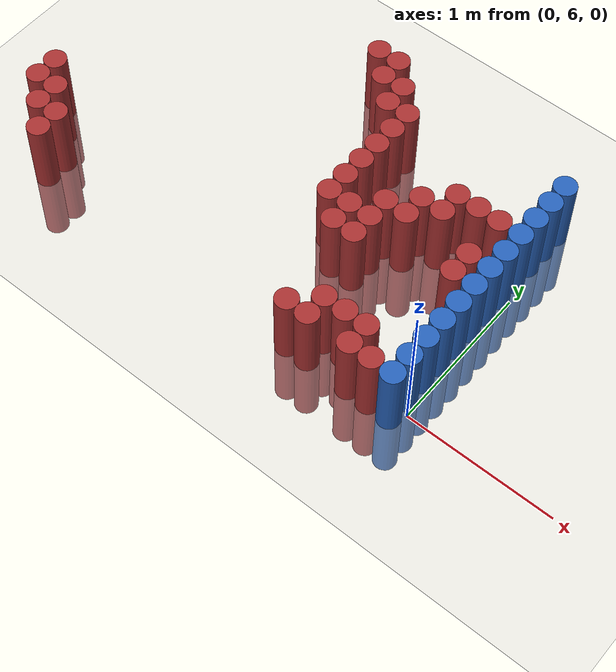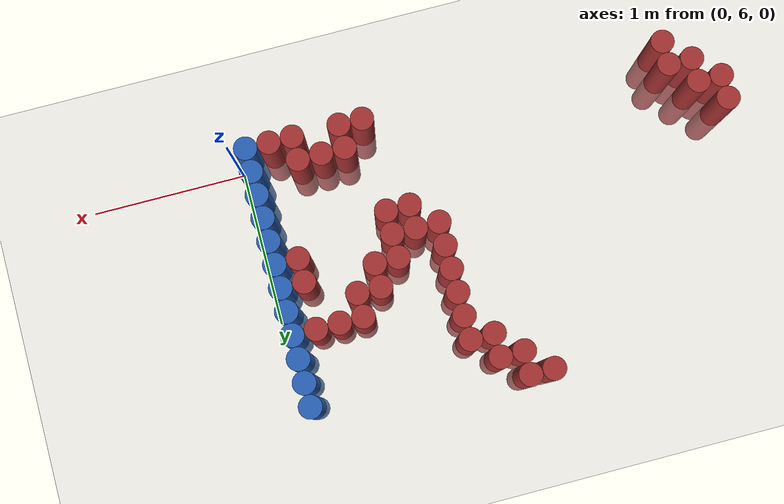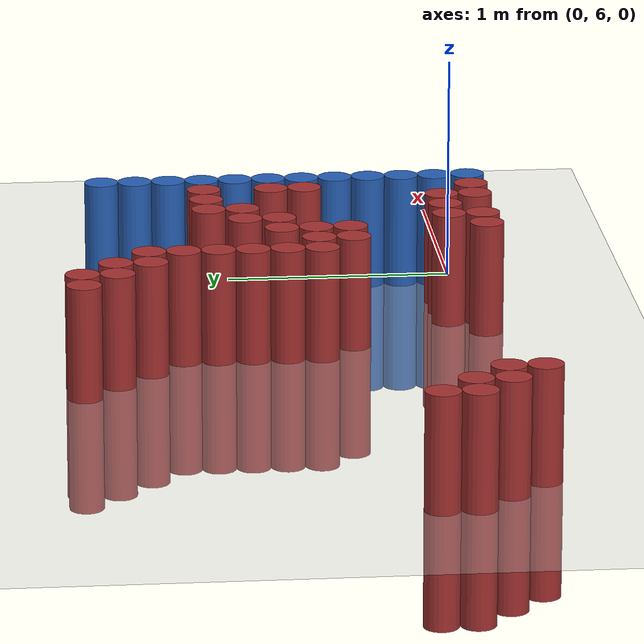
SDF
<sdf version="1.6">
 <world name="default">
  <model name="ground_plane">
   <static>1</static>
   <link name="link">
    <collision name="collision">
     <geometry><plane><normal>0 0 1</normal><size>100 100</size></plane></geometry>
     <surface><friction><ode><mu>100</mu><mu2>50</mu2></ode></friction></surface>
    </collision>
    <visual name="visual">
     <cast_shadows>0</cast_shadows>
     <geometry><plane><normal>0 0 1</normal><size>100 100</size></plane></geometry>
     <material>
      <script><uri>file://media/materials/scripts/gazebo.material</uri><name>Gazebo/Grey</name></script>
     </material>
    </visual>
   </link>
  </model>
  <model name="unit_cylinder_173">
   <static>1</static>
   <pose>-3.075000 6.225000 0.000000 0.000000 0.000000 0.000000</pose>
   <link name="link">
    <inertial>
     <mass>1</mass>
     <inertia><ixx>0.145833</ixx><ixy>0</ixy><ixz>0</ixz><iyy>0.145833</iyy><iyz>0</iyz><izz>0.125</izz></inertia>
    </inertial>
    <collision name="collision">
     <geometry><cylinder><radius>0.075000</radius><length>1</length></cylinder></geometry>
    </collision>
    <visual name="visual">
     <geometry><cylinder><radius>0.075000</radius><length>1</length></cylinder></geometry>
     <material>
      <ambient>0.648000 0.192000 0.192000 1</ambient>
      <diffuse>0.648000 0.192000 0.192000 1</diffuse>
     </material>
     <material>
      <script><name>Gazebo/Grey</name><uri>file://media/materials/scripts/gazebo.material</uri></script>
     </material>
    </visual>
   </link>
  </model>
  <model name="unit_cylinder_174">
   <static>1</static>
   <pose>-3.075000 6.375000 0.000000 0.000000 0.000000 0.000000</pose>
   <link name="link">
    <inertial>
     <mass>1</mass>
     <inertia><ixx>0.145833</ixx><ixy>0</ixy><ixz>0</ixz><iyy>0.145833</iyy><iyz>0</iyz><izz>0.125</izz></inertia>
    </inertial>
    <collision name="collision">
     <geometry><cylinder><radius>0.075000</radius><length>1</length></cylinder></geometry>
    </collision>
    <visual name="visual">
     <geometry><cylinder><radius>0.075000</radius><length>1</length></cylinder></geometry>
     <material>
      <ambient>0.648000 0.192000 0.192000 1</ambient>
      <diffuse>0.648000 0.192000 0.192000 1</diffuse>
     </material>
     <material>
      <script><name>Gazebo/Grey</name><uri>file://media/materials/scripts/gazebo.material</uri></script>
     </material>
    </visual>
   </link>
  </model>
  <model name="unit_cylinder_177">
   <static>1</static>
   <pose>-2.925000 6.075000 0.000000 0.000000 0.000000 0.000000</pose>
   <link name="link">
    <inertial>
     <mass>1</mass>
     <inertia><ixx>0.145833</ixx><ixy>0</ixy><ixz>0</ixz><iyy>0.145833</iyy><iyz>0</iyz><izz>0.125</izz></inertia>
    </inertial>
    <collision name="collision">
     <geometry><cylinder><radius>0.075000</radius><length>1</length></cylinder></geometry>
    </collision>
    <visual name="visual">
     <geometry><cylinder><radius>0.075000</radius><length>1</length></cylinder></geometry>
     <material>
      <ambient>0.648000 0.192000 0.192000 1</ambient>
      <diffuse>0.648000 0.192000 0.192000 1</diffuse>
     </material>
     <material>
      <script><name>Gazebo/Grey</name><uri>file://media/materials/scripts/gazebo.material</uri></script>
     </material>
    </visual>
   </link>
  </model>
  <model name="unit_cylinder_178">
   <static>1</static>
   <pose>-2.925000 6.225000 0.000000 0.000000 0.000000 0.000000</pose>
   <link name="link">
    <inertial>
     <mass>1</mass>
     <inertia><ixx>0.145833</ixx><ixy>0</ixy><ixz>0</ixz><iyy>0.145833</iyy><iyz>0</iyz><izz>0.125</izz></inertia>
    </inertial>
    <collision name="collision">
     <geometry><cylinder><radius>0.075000</radius><length>1</length></cylinder></geometry>
    </collision>
    <visual name="visual">
     <geometry><cylinder><radius>0.075000</radius><length>1</length></cylinder></geometry>
     <material>
      <ambient>0.648000 0.192000 0.192000 1</ambient>
      <diffuse>0.648000 0.192000 0.192000 1</diffuse>
     </material>
     <material>
      <script><name>Gazebo/Grey</name><uri>file://media/materials/scripts/gazebo.material</uri></script>
     </material>
    </visual>
   </link>
  </model>
  <model name="unit_cylinder_182">
   <static>1</static>
   <pose>-2.775000 5.925000 0.000000 0.000000 0.000000 0.000000</pose>
   <link name="link">
    <inertial>
     <mass>1</mass>
     <inertia><ixx>0.145833</ixx><ixy>0</ixy><ixz>0</ixz><iyy>0.145833</iyy><iyz>0</iyz><izz>0.125</izz></inertia>
    </inertial>
    <collision name="collision">
     <geometry><cylinder><radius>0.075000</radius><length>1</length></cylinder></geometry>
    </collision>
    <visual name="visual">
     <geometry><cylinder><radius>0.075000</radius><length>1</length></cylinder></geometry>
     <material>
      <ambient>0.648000 0.192000 0.192000 1</ambient>
      <diffuse>0.648000 0.192000 0.192000 1</diffuse>
     </material>
     <material>
      <script><name>Gazebo/Grey</name><uri>file://media/materials/scripts/gazebo.material</uri></script>
     </material>
    </visual>
   </link>
  </model>
  <model name="unit_cylinder_183">
   <static>1</static>
   <pose>-2.775000 6.075000 0.000000 0.000000 0.000000 0.000000</pose>
   <link name="link">
    <inertial>
     <mass>1</mass>
     <inertia><ixx>0.145833</ixx><ixy>0</ixy><ixz>0</ixz><iyy>0.145833</iyy><iyz>0</iyz><izz>0.125</izz></inertia>
    </inertial>
    <collision name="collision">
     <geometry><cylinder><radius>0.075000</radius><length>1</length></cylinder></geometry>
    </collision>
    <visual name="visual">
     <geometry><cylinder><radius>0.075000</radius><length>1</length></cylinder></geometry>
     <material>
      <ambient>0.648000 0.192000 0.192000 1</ambient>
      <diffuse>0.648000 0.192000 0.192000 1</diffuse>
     </material>
     <material>
      <script><name>Gazebo/Grey</name><uri>file://media/materials/scripts/gazebo.material</uri></script>
     </material>
    </visual>
   </link>
  </model>
  <model name="unit_cylinder_206">
   <static>1</static>
   <pose>-1.575000 7.725000 0.000000 0.000000 0.000000 0.000000</pose>
   <link name="link">
    <inertial>
     <mass>1</mass>
     <inertia><ixx>0.145833</ixx><ixy>0</ixy><ixz>0</ixz><iyy>0.145833</iyy><iyz>0</iyz><izz>0.125</izz></inertia>
    </inertial>
    <collision name="collision">
     <geometry><cylinder><radius>0.075000</radius><length>1</length></cylinder></geometry>
    </collision>
    <visual name="visual">
     <geometry><cylinder><radius>0.075000</radius><length>1</length></cylinder></geometry>
     <material>
      <ambient>0.648000 0.192000 0.192000 1</ambient>
      <diffuse>0.648000 0.192000 0.192000 1</diffuse>
     </material>
     <material>
      <script><name>Gazebo/Grey</name><uri>file://media/materials/scripts/gazebo.material</uri></script>
     </material>
    </visual>
   </link>
  </model>
  <model name="unit_cylinder_211">
   <static>1</static>
   <pose>-1.425000 7.575000 0.000000 0.000000 0.000000 0.000000</pose>
   <link name="link">
    <inertial>
     <mass>1</mass>
     <inertia><ixx>0.145833</ixx><ixy>0</ixy><ixz>0</ixz><iyy>0.145833</iyy><iyz>0</iyz><izz>0.125</izz></inertia>
    </inertial>
    <collision name="collision">
     <geometry><cylinder><radius>0.075000</radius><length>1</length></cylinder></geometry>
    </collision>
    <visual name="visual">
     <geometry><cylinder><radius>0.075000</radius><length>1</length></cylinder></geometry>
     <material>
      <ambient>0.648000 0.192000 0.192000 1</ambient>
      <diffuse>0.648000 0.192000 0.192000 1</diffuse>
     </material>
     <material>
      <script><name>Gazebo/Grey</name><uri>file://media/materials/scripts/gazebo.material</uri></script>
     </material>
    </visual>
   </link>
  </model>
  <model name="unit_cylinder_212">
   <static>1</static>
   <pose>-1.425000 7.725000 0.000000 0.000000 0.000000 0.000000</pose>
   <link name="link">
    <inertial>
     <mass>1</mass>
     <inertia><ixx>0.145833</ixx><ixy>0</ixy><ixz>0</ixz><iyy>0.145833</iyy><iyz>0</iyz><izz>0.125</izz></inertia>
    </inertial>
    <collision name="collision">
     <geometry><cylinder><radius>0.075000</radius><length>1</length></cylinder></geometry>
    </collision>
    <visual name="visual">
     <geometry><cylinder><radius>0.075000</radius><length>1</length></cylinder></geometry>
     <material>
      <ambient>0.648000 0.192000 0.192000 1</ambient>
      <diffuse>0.648000 0.192000 0.192000 1</diffuse>
     </material>
     <material>
      <script><name>Gazebo/Grey</name><uri>file://media/materials/scripts/gazebo.material</uri></script>
     </material>
    </visual>
   </link>
  </model>
  <model name="unit_cylinder_215">
   <static>1</static>
   <pose>-1.275000 7.425000 0.000000 0.000000 0.000000 0.000000</pose>
   <link name="link">
    <inertial>
     <mass>1</mass>
     <inertia><ixx>0.145833</ixx><ixy>0</ixy><ixz>0</ixz><iyy>0.145833</iyy><iyz>0</iyz><izz>0.125</izz></inertia>
    </inertial>
    <collision name="collision">
     <geometry><cylinder><radius>0.075000</radius><length>1</length></cylinder></geometry>
    </collision>
    <visual name="visual">
     <geometry><cylinder><radius>0.075000</radius><length>1</length></cylinder></geometry>
     <material>
      <ambient>0.648000 0.192000 0.192000 1</ambient>
      <diffuse>0.648000 0.192000 0.192000 1</diffuse>
     </material>
     <material>
      <script><name>Gazebo/Grey</name><uri>file://media/materials/scripts/gazebo.material</uri></script>
     </material>
    </visual>
   </link>
  </model>
  <model name="unit_cylinder_216">
   <static>1</static>
   <pose>-1.275000 7.575000 0.000000 0.000000 0.000000 0.000000</pose>
   <link name="link">
    <inertial>
     <mass>1</mass>
     <inertia><ixx>0.145833</ixx><ixy>0</ixy><ixz>0</ixz><iyy>0.145833</iyy><iyz>0</iyz><izz>0.125</izz></inertia>
    </inertial>
    <collision name="collision">
     <geometry><cylinder><radius>0.075000</radius><length>1</length></cylinder></geometry>
    </collision>
    <visual name="visual">
     <geometry><cylinder><radius>0.075000</radius><length>1</length></cylinder></geometry>
     <material>
      <ambient>0.648000 0.192000 0.192000 1</ambient>
      <diffuse>0.648000 0.192000 0.192000 1</diffuse>
     </material>
     <material>
      <script><name>Gazebo/Grey</name><uri>file://media/materials/scripts/gazebo.material</uri></script>
     </material>
    </visual>
   </link>
  </model>
  <model name="unit_cylinder_218">
   <static>1</static>
   <pose>-1.125000 6.675000 0.000000 0.000000 0.000000 0.000000</pose>
   <link name="link">
    <inertial>
     <mass>1</mass>
     <inertia><ixx>0.145833</ixx><ixy>0</ixy><ixz>0</ixz><iyy>0.145833</iyy><iyz>0</iyz><izz>0.125</izz></inertia>
    </inertial>
    <collision name="collision">
     <geometry><cylinder><radius>0.075000</radius><length>1</length></cylinder></geometry>
    </collision>
    <visual name="visual">
     <geometry><cylinder><radius>0.075000</radius><length>1</length></cylinder></geometry>
     <material>
      <ambient>0.648000 0.192000 0.192000 1</ambient>
      <diffuse>0.648000 0.192000 0.192000 1</diffuse>
     </material>
     <material>
      <script><name>Gazebo/Grey</name><uri>file://media/materials/scripts/gazebo.material</uri></script>
     </material>
    </visual>
   </link>
  </model>
  <model name="unit_cylinder_219">
   <static>1</static>
   <pose>-1.125000 6.825000 0.000000 0.000000 0.000000 0.000000</pose>
   <link name="link">
    <inertial>
     <mass>1</mass>
     <inertia><ixx>0.145833</ixx><ixy>0</ixy><ixz>0</ixz><iyy>0.145833</iyy><iyz>0</iyz><izz>0.125</izz></inertia>
    </inertial>
    <collision name="collision">
     <geometry><cylinder><radius>0.075000</radius><length>1</length></cylinder></geometry>
    </collision>
    <visual name="visual">
     <geometry><cylinder><radius>0.075000</radius><length>1</length></cylinder></geometry>
     <material>
      <ambient>0.648000 0.192000 0.192000 1</ambient>
      <diffuse>0.648000 0.192000 0.192000 1</diffuse>
     </material>
     <material>
      <script><name>Gazebo/Grey</name><uri>file://media/materials/scripts/gazebo.material</uri></script>
     </material>
    </visual>
   </link>
  </model>
  <model name="unit_cylinder_220">
   <static>1</static>
   <pose>-1.125000 6.975000 0.000000 0.000000 0.000000 0.000000</pose>
   <link name="link">
    <inertial>
     <mass>1</mass>
     <inertia><ixx>0.145833</ixx><ixy>0</ixy><ixz>0</ixz><iyy>0.145833</iyy><iyz>0</iyz><izz>0.125</izz></inertia>
    </inertial>
    <collision name="collision">
     <geometry><cylinder><radius>0.075000</radius><length>1</length></cylinder></geometry>
    </collision>
    <visual name="visual">
     <geometry><cylinder><radius>0.075000</radius><length>1</length></cylinder></geometry>
     <material>
      <ambient>0.648000 0.192000 0.192000 1</ambient>
      <diffuse>0.648000 0.192000 0.192000 1</diffuse>
     </material>
     <material>
      <script><name>Gazebo/Grey</name><uri>file://media/materials/scripts/gazebo.material</uri></script>
     </material>
    </visual>
   </link>
  </model>
  <model name="unit_cylinder_221">
   <static>1</static>
   <pose>-1.125000 7.125000 0.000000 0.000000 0.000000 0.000000</pose>
   <link name="link">
    <inertial>
     <mass>1</mass>
     <inertia><ixx>0.145833</ixx><ixy>0</ixy><ixz>0</ixz><iyy>0.145833</iyy><iyz>0</iyz><izz>0.125</izz></inertia>
    </inertial>
    <collision name="collision">
     <geometry><cylinder><radius>0.075000</radius><length>1</length></cylinder></geometry>
    </collision>
    <visual name="visual">
     <geometry><cylinder><radius>0.075000</radius><length>1</length></cylinder></geometry>
     <material>
      <ambient>0.648000 0.192000 0.192000 1</ambient>
      <diffuse>0.648000 0.192000 0.192000 1</diffuse>
     </material>
     <material>
      <script><name>Gazebo/Grey</name><uri>file://media/materials/scripts/gazebo.material</uri></script>
     </material>
    </visual>
   </link>
  </model>
  <model name="unit_cylinder_222">
   <static>1</static>
   <pose>-1.125000 7.275000 0.000000 0.000000 0.000000 0.000000</pose>
   <link name="link">
    <inertial>
     <mass>1</mass>
     <inertia><ixx>0.145833</ixx><ixy>0</ixy><ixz>0</ixz><iyy>0.145833</iyy><iyz>0</iyz><izz>0.125</izz></inertia>
    </inertial>
    <collision name="collision">
     <geometry><cylinder><radius>0.075000</radius><length>1</length></cylinder></geometry>
    </collision>
    <visual name="visual">
     <geometry><cylinder><radius>0.075000</radius><length>1</length></cylinder></geometry>
     <material>
      <ambient>0.648000 0.192000 0.192000 1</ambient>
      <diffuse>0.648000 0.192000 0.192000 1</diffuse>
     </material>
     <material>
      <script><name>Gazebo/Grey</name><uri>file://media/materials/scripts/gazebo.material</uri></script>
     </material>
    </visual>
   </link>
  </model>
  <model name="unit_cylinder_223">
   <static>1</static>
   <pose>-1.125000 7.425000 0.000000 0.000000 0.000000 0.000000</pose>
   <link name="link">
    <inertial>
     <mass>1</mass>
     <inertia><ixx>0.145833</ixx><ixy>0</ixy><ixz>0</ixz><iyy>0.145833</iyy><iyz>0</iyz><izz>0.125</izz></inertia>
    </inertial>
    <collision name="collision">
     <geometry><cylinder><radius>0.075000</radius><length>1</length></cylinder></geometry>
    </collision>
    <visual name="visual">
     <geometry><cylinder><radius>0.075000</radius><length>1</length></cylinder></geometry>
     <material>
      <ambient>0.648000 0.192000 0.192000 1</ambient>
      <diffuse>0.648000 0.192000 0.192000 1</diffuse>
     </material>
     <material>
      <script><name>Gazebo/Grey</name><uri>file://media/materials/scripts/gazebo.material</uri></script>
     </material>
    </visual>
   </link>
  </model>
  <model name="unit_cylinder_228">
   <static>1</static>
   <pose>-0.975000 6.525000 0.000000 0.000000 0.000000 0.000000</pose>
   <link name="link">
    <inertial>
     <mass>1</mass>
     <inertia><ixx>0.145833</ixx><ixy>0</ixy><ixz>0</ixz><iyy>0.145833</iyy><iyz>0</iyz><izz>0.125</izz></inertia>
    </inertial>
    <collision name="collision">
     <geometry><cylinder><radius>0.075000</radius><length>1</length></cylinder></geometry>
    </collision>
    <visual name="visual">
     <geometry><cylinder><radius>0.075000</radius><length>1</length></cylinder></geometry>
     <material>
      <ambient>0.648000 0.192000 0.192000 1</ambient>
      <diffuse>0.648000 0.192000 0.192000 1</diffuse>
     </material>
     <material>
      <script><name>Gazebo/Grey</name><uri>file://media/materials/scripts/gazebo.material</uri></script>
     </material>
    </visual>
   </link>
  </model>
  <model name="unit_cylinder_229">
   <static>1</static>
   <pose>-0.975000 6.675000 0.000000 0.000000 0.000000 0.000000</pose>
   <link name="link">
    <inertial>
     <mass>1</mass>
     <inertia><ixx>0.145833</ixx><ixy>0</ixy><ixz>0</ixz><iyy>0.145833</iyy><iyz>0</iyz><izz>0.125</izz></inertia>
    </inertial>
    <collision name="collision">
     <geometry><cylinder><radius>0.075000</radius><length>1</length></cylinder></geometry>
    </collision>
    <visual name="visual">
     <geometry><cylinder><radius>0.075000</radius><length>1</length></cylinder></geometry>
     <material>
      <ambient>0.648000 0.192000 0.192000 1</ambient>
      <diffuse>0.648000 0.192000 0.192000 1</diffuse>
     </material>
     <material>
      <script><name>Gazebo/Grey</name><uri>file://media/materials/scripts/gazebo.material</uri></script>
     </material>
    </visual>
   </link>
  </model>
  <model name="unit_cylinder_236">
   <static>1</static>
   <pose>-0.825000 5.925000 0.000000 0.000000 0.000000 0.000000</pose>
   <link name="link">
    <inertial>
     <mass>1</mass>
     <inertia><ixx>0.145833</ixx><ixy>0</ixy><ixz>0</ixz><iyy>0.145833</iyy><iyz>0</iyz><izz>0.125</izz></inertia>
    </inertial>
    <collision name="collision">
     <geometry><cylinder><radius>0.075000</radius><length>1</length></cylinder></geometry>
    </collision>
    <visual name="visual">
     <geometry><cylinder><radius>0.075000</radius><length>1</length></cylinder></geometry>
     <material>
      <ambient>0.648000 0.192000 0.192000 1</ambient>
      <diffuse>0.648000 0.192000 0.192000 1</diffuse>
     </material>
     <material>
      <script><name>Gazebo/Grey</name><uri>file://media/materials/scripts/gazebo.material</uri></script>
     </material>
    </visual>
   </link>
  </model>
  <model name="unit_cylinder_237">
   <static>1</static>
   <pose>-0.825000 6.525000 0.000000 0.000000 0.000000 0.000000</pose>
   <link name="link">
    <inertial>
     <mass>1</mass>
     <inertia><ixx>0.145833</ixx><ixy>0</ixy><ixz>0</ixz><iyy>0.145833</iyy><iyz>0</iyz><izz>0.125</izz></inertia>
    </inertial>
    <collision name="collision">
     <geometry><cylinder><radius>0.075000</radius><length>1</length></cylinder></geometry>
    </collision>
    <visual name="visual">
     <geometry><cylinder><radius>0.075000</radius><length>1</length></cylinder></geometry>
     <material>
      <ambient>0.648000 0.192000 0.192000 1</ambient>
      <diffuse>0.648000 0.192000 0.192000 1</diffuse>
     </material>
     <material>
      <script><name>Gazebo/Grey</name><uri>file://media/materials/scripts/gazebo.material</uri></script>
     </material>
    </visual>
   </link>
  </model>
  <model name="unit_cylinder_238">
   <static>1</static>
   <pose>-0.825000 6.675000 0.000000 0.000000 0.000000 0.000000</pose>
   <link name="link">
    <inertial>
     <mass>1</mass>
     <inertia><ixx>0.145833</ixx><ixy>0</ixy><ixz>0</ixz><iyy>0.145833</iyy><iyz>0</iyz><izz>0.125</izz></inertia>
    </inertial>
    <collision name="collision">
     <geometry><cylinder><radius>0.075000</radius><length>1</length></cylinder></geometry>
    </collision>
    <visual name="visual">
     <geometry><cylinder><radius>0.075000</radius><length>1</length></cylinder></geometry>
     <material>
      <ambient>0.648000 0.192000 0.192000 1</ambient>
      <diffuse>0.648000 0.192000 0.192000 1</diffuse>
     </material>
     <material>
      <script><name>Gazebo/Grey</name><uri>file://media/materials/scripts/gazebo.material</uri></script>
     </material>
    </visual>
   </link>
  </model>
  <model name="unit_cylinder_239">
   <static>1</static>
   <pose>-0.825000 6.825000 0.000000 0.000000 0.000000 0.000000</pose>
   <link name="link">
    <inertial>
     <mass>1</mass>
     <inertia><ixx>0.145833</ixx><ixy>0</ixy><ixz>0</ixz><iyy>0.145833</iyy><iyz>0</iyz><izz>0.125</izz></inertia>
    </inertial>
    <collision name="collision">
     <geometry><cylinder><radius>0.075000</radius><length>1</length></cylinder></geometry>
    </collision>
    <visual name="visual">
     <geometry><cylinder><radius>0.075000</radius><length>1</length></cylinder></geometry>
     <material>
      <ambient>0.648000 0.192000 0.192000 1</ambient>
      <diffuse>0.648000 0.192000 0.192000 1</diffuse>
     </material>
     <material>
      <script><name>Gazebo/Grey</name><uri>file://media/materials/scripts/gazebo.material</uri></script>
     </material>
    </visual>
   </link>
  </model>
  <model name="unit_cylinder_242">
   <static>1</static>
   <pose>-0.675000 5.925000 0.000000 0.000000 0.000000 0.000000</pose>
   <link name="link">
    <inertial>
     <mass>1</mass>
     <inertia><ixx>0.145833</ixx><ixy>0</ixy><ixz>0</ixz><iyy>0.145833</iyy><iyz>0</iyz><izz>0.125</izz></inertia>
    </inertial>
    <collision name="collision">
     <geometry><cylinder><radius>0.075000</radius><length>1</length></cylinder></geometry>
    </collision>
    <visual name="visual">
     <geometry><cylinder><radius>0.075000</radius><length>1</length></cylinder></geometry>
     <material>
      <ambient>0.648000 0.192000 0.192000 1</ambient>
      <diffuse>0.648000 0.192000 0.192000 1</diffuse>
     </material>
     <material>
      <script><name>Gazebo/Grey</name><uri>file://media/materials/scripts/gazebo.material</uri></script>
     </material>
    </visual>
   </link>
  </model>
  <model name="unit_cylinder_243">
   <static>1</static>
   <pose>-0.675000 6.075000 0.000000 0.000000 0.000000 0.000000</pose>
   <link name="link">
    <inertial>
     <mass>1</mass>
     <inertia><ixx>0.145833</ixx><ixy>0</ixy><ixz>0</ixz><iyy>0.145833</iyy><iyz>0</iyz><izz>0.125</izz></inertia>
    </inertial>
    <collision name="collision">
     <geometry><cylinder><radius>0.075000</radius><length>1</length></cylinder></geometry>
    </collision>
    <visual name="visual">
     <geometry><cylinder><radius>0.075000</radius><length>1</length></cylinder></geometry>
     <material>
      <ambient>0.648000 0.192000 0.192000 1</ambient>
      <diffuse>0.648000 0.192000 0.192000 1</diffuse>
     </material>
     <material>
      <script><name>Gazebo/Grey</name><uri>file://media/materials/scripts/gazebo.material</uri></script>
     </material>
    </visual>
   </link>
  </model>
  <model name="unit_cylinder_244">
   <static>1</static>
   <pose>-0.675000 6.825000 0.000000 0.000000 0.000000 0.000000</pose>
   <link name="link">
    <inertial>
     <mass>1</mass>
     <inertia><ixx>0.145833</ixx><ixy>0</ixy><ixz>0</ixz><iyy>0.145833</iyy><iyz>0</iyz><izz>0.125</izz></inertia>
    </inertial>
    <collision name="collision">
     <geometry><cylinder><radius>0.075000</radius><length>1</length></cylinder></geometry>
    </collision>
    <visual name="visual">
     <geometry><cylinder><radius>0.075000</radius><length>1</length></cylinder></geometry>
     <material>
      <ambient>0.648000 0.192000 0.192000 1</ambient>
      <diffuse>0.648000 0.192000 0.192000 1</diffuse>
     </material>
     <material>
      <script><name>Gazebo/Grey</name><uri>file://media/materials/scripts/gazebo.material</uri></script>
     </material>
    </visual>
   </link>
  </model>
  <model name="unit_cylinder_245">
   <static>1</static>
   <pose>-0.675000 6.975000 0.000000 0.000000 0.000000 0.000000</pose>
   <link name="link">
    <inertial>
     <mass>1</mass>
     <inertia><ixx>0.145833</ixx><ixy>0</ixy><ixz>0</ixz><iyy>0.145833</iyy><iyz>0</iyz><izz>0.125</izz></inertia>
    </inertial>
    <collision name="collision">
     <geometry><cylinder><radius>0.075000</radius><length>1</length></cylinder></geometry>
    </collision>
    <visual name="visual">
     <geometry><cylinder><radius>0.075000</radius><length>1</length></cylinder></geometry>
     <material>
      <ambient>0.648000 0.192000 0.192000 1</ambient>
      <diffuse>0.648000 0.192000 0.192000 1</diffuse>
     </material>
     <material>
      <script><name>Gazebo/Grey</name><uri>file://media/materials/scripts/gazebo.material</uri></script>
     </material>
    </visual>
   </link>
  </model>
  <model name="unit_cylinder_250">
   <static>1</static>
   <pose>-0.525000 6.075000 0.000000 0.000000 0.000000 0.000000</pose>
   <link name="link">
    <inertial>
     <mass>1</mass>
     <inertia><ixx>0.145833</ixx><ixy>0</ixy><ixz>0</ixz><iyy>0.145833</iyy><iyz>0</iyz><izz>0.125</izz></inertia>
    </inertial>
    <collision name="collision">
     <geometry><cylinder><radius>0.075000</radius><length>1</length></cylinder></geometry>
    </collision>
    <visual name="visual">
     <geometry><cylinder><radius>0.075000</radius><length>1</length></cylinder></geometry>
     <material>
      <ambient>0.648000 0.192000 0.192000 1</ambient>
      <diffuse>0.648000 0.192000 0.192000 1</diffuse>
     </material>
     <material>
      <script><name>Gazebo/Grey</name><uri>file://media/materials/scripts/gazebo.material</uri></script>
     </material>
    </visual>
   </link>
  </model>
  <model name="unit_cylinder_251">
   <static>1</static>
   <pose>-0.525000 6.975000 0.000000 0.000000 0.000000 0.000000</pose>
   <link name="link">
    <inertial>
     <mass>1</mass>
     <inertia><ixx>0.145833</ixx><ixy>0</ixy><ixz>0</ixz><iyy>0.145833</iyy><iyz>0</iyz><izz>0.125</izz></inertia>
    </inertial>
    <collision name="collision">
     <geometry><cylinder><radius>0.075000</radius><length>1</length></cylinder></geometry>
    </collision>
    <visual name="visual">
     <geometry><cylinder><radius>0.075000</radius><length>1</length></cylinder></geometry>
     <material>
      <ambient>0.648000 0.192000 0.192000 1</ambient>
      <diffuse>0.648000 0.192000 0.192000 1</diffuse>
     </material>
     <material>
      <script><name>Gazebo/Grey</name><uri>file://media/materials/scripts/gazebo.material</uri></script>
     </material>
    </visual>
   </link>
  </model>
  <model name="unit_cylinder_252">
   <static>1</static>
   <pose>-0.525000 7.125000 0.000000 0.000000 0.000000 0.000000</pose>
   <link name="link">
    <inertial>
     <mass>1</mass>
     <inertia><ixx>0.145833</ixx><ixy>0</ixy><ixz>0</ixz><iyy>0.145833</iyy><iyz>0</iyz><izz>0.125</izz></inertia>
    </inertial>
    <collision name="collision">
     <geometry><cylinder><radius>0.075000</radius><length>1</length></cylinder></geometry>
    </collision>
    <visual name="visual">
     <geometry><cylinder><radius>0.075000</radius><length>1</length></cylinder></geometry>
     <material>
      <ambient>0.648000 0.192000 0.192000 1</ambient>
      <diffuse>0.648000 0.192000 0.192000 1</diffuse>
     </material>
     <material>
      <script><name>Gazebo/Grey</name><uri>file://media/materials/scripts/gazebo.material</uri></script>
     </material>
    </visual>
   </link>
  </model>
  <model name="unit_cylinder_256">
   <static>1</static>
   <pose>-0.375000 5.925000 0.000000 0.000000 0.000000 0.000000</pose>
   <link name="link">
    <inertial>
     <mass>1</mass>
     <inertia><ixx>0.145833</ixx><ixy>0</ixy><ixz>0</ixz><iyy>0.145833</iyy><iyz>0</iyz><izz>0.125</izz></inertia>
    </inertial>
    <collision name="collision">
     <geometry><cylinder><radius>0.075000</radius><length>1</length></cylinder></geometry>
    </collision>
    <visual name="visual">
     <geometry><cylinder><radius>0.075000</radius><length>1</length></cylinder></geometry>
     <material>
      <ambient>0.648000 0.192000 0.192000 1</ambient>
      <diffuse>0.648000 0.192000 0.192000 1</diffuse>
     </material>
     <material>
      <script><name>Gazebo/Grey</name><uri>file://media/materials/scripts/gazebo.material</uri></script>
     </material>
    </visual>
   </link>
  </model>
  <model name="unit_cylinder_257">
   <static>1</static>
   <pose>-0.375000 6.075000 0.000000 0.000000 0.000000 0.000000</pose>
   <link name="link">
    <inertial>
     <mass>1</mass>
     <inertia><ixx>0.145833</ixx><ixy>0</ixy><ixz>0</ixz><iyy>0.145833</iyy><iyz>0</iyz><izz>0.125</izz></inertia>
    </inertial>
    <collision name="collision">
     <geometry><cylinder><radius>0.075000</radius><length>1</length></cylinder></geometry>
    </collision>
    <visual name="visual">
     <geometry><cylinder><radius>0.075000</radius><length>1</length></cylinder></geometry>
     <material>
      <ambient>0.648000 0.192000 0.192000 1</ambient>
      <diffuse>0.648000 0.192000 0.192000 1</diffuse>
     </material>
     <material>
      <script><name>Gazebo/Grey</name><uri>file://media/materials/scripts/gazebo.material</uri></script>
     </material>
    </visual>
   </link>
  </model>
  <model name="unit_cylinder_258">
   <static>1</static>
   <pose>-0.375000 7.125000 0.000000 0.000000 0.000000 0.000000</pose>
   <link name="link">
    <inertial>
     <mass>1</mass>
     <inertia><ixx>0.145833</ixx><ixy>0</ixy><ixz>0</ixz><iyy>0.145833</iyy><iyz>0</iyz><izz>0.125</izz></inertia>
    </inertial>
    <collision name="collision">
     <geometry><cylinder><radius>0.075000</radius><length>1</length></cylinder></geometry>
    </collision>
    <visual name="visual">
     <geometry><cylinder><radius>0.075000</radius><length>1</length></cylinder></geometry>
     <material>
      <ambient>0.648000 0.192000 0.192000 1</ambient>
      <diffuse>0.648000 0.192000 0.192000 1</diffuse>
     </material>
     <material>
      <script><name>Gazebo/Grey</name><uri>file://media/materials/scripts/gazebo.material</uri></script>
     </material>
    </visual>
   </link>
  </model>
  <model name="unit_cylinder_261">
   <static>1</static>
   <pose>-0.225000 5.925000 0.000000 0.000000 0.000000 0.000000</pose>
   <link name="link">
    <inertial>
     <mass>1</mass>
     <inertia><ixx>0.145833</ixx><ixy>0</ixy><ixz>0</ixz><iyy>0.145833</iyy><iyz>0</iyz><izz>0.125</izz></inertia>
    </inertial>
    <collision name="collision">
     <geometry><cylinder><radius>0.075000</radius><length>1</length></cylinder></geometry>
    </collision>
    <visual name="visual">
     <geometry><cylinder><radius>0.075000</radius><length>1</length></cylinder></geometry>
     <material>
      <ambient>0.648000 0.192000 0.192000 1</ambient>
      <diffuse>0.648000 0.192000 0.192000 1</diffuse>
     </material>
     <material>
      <script><name>Gazebo/Grey</name><uri>file://media/materials/scripts/gazebo.material</uri></script>
     </material>
    </visual>
   </link>
  </model>
  <model name="unit_cylinder_262">
   <static>1</static>
   <pose>-0.225000 6.675000 0.000000 0.000000 0.000000 0.000000</pose>
   <link name="link">
    <inertial>
     <mass>1</mass>
     <inertia><ixx>0.145833</ixx><ixy>0</ixy><ixz>0</ixz><iyy>0.145833</iyy><iyz>0</iyz><izz>0.125</izz></inertia>
    </inertial>
    <collision name="collision">
     <geometry><cylinder><radius>0.075000</radius><length>1</length></cylinder></geometry>
    </collision>
    <visual name="visual">
     <geometry><cylinder><radius>0.075000</radius><length>1</length></cylinder></geometry>
     <material>
      <ambient>0.648000 0.192000 0.192000 1</ambient>
      <diffuse>0.648000 0.192000 0.192000 1</diffuse>
     </material>
     <material>
      <script><name>Gazebo/Grey</name><uri>file://media/materials/scripts/gazebo.material</uri></script>
     </material>
    </visual>
   </link>
  </model>
  <model name="unit_cylinder_263">
   <static>1</static>
   <pose>-0.225000 6.825000 0.000000 0.000000 0.000000 0.000000</pose>
   <link name="link">
    <inertial>
     <mass>1</mass>
     <inertia><ixx>0.145833</ixx><ixy>0</ixy><ixz>0</ixz><iyy>0.145833</iyy><iyz>0</iyz><izz>0.125</izz></inertia>
    </inertial>
    <collision name="collision">
     <geometry><cylinder><radius>0.075000</radius><length>1</length></cylinder></geometry>
    </collision>
    <visual name="visual">
     <geometry><cylinder><radius>0.075000</radius><length>1</length></cylinder></geometry>
     <material>
      <ambient>0.648000 0.192000 0.192000 1</ambient>
      <diffuse>0.648000 0.192000 0.192000 1</diffuse>
     </material>
     <material>
      <script><name>Gazebo/Grey</name><uri>file://media/materials/scripts/gazebo.material</uri></script>
     </material>
    </visual>
   </link>
  </model>
  <model name="unit_cylinder_264">
   <static>1</static>
   <pose>-0.225000 7.125000 0.000000 0.000000 0.000000 0.000000</pose>
   <link name="link">
    <inertial>
     <mass>1</mass>
     <inertia><ixx>0.145833</ixx><ixy>0</ixy><ixz>0</ixz><iyy>0.145833</iyy><iyz>0</iyz><izz>0.125</izz></inertia>
    </inertial>
    <collision name="collision">
     <geometry><cylinder><radius>0.075000</radius><length>1</length></cylinder></geometry>
    </collision>
    <visual name="visual">
     <geometry><cylinder><radius>0.075000</radius><length>1</length></cylinder></geometry>
     <material>
      <ambient>0.648000 0.192000 0.192000 1</ambient>
      <diffuse>0.648000 0.192000 0.192000 1</diffuse>
     </material>
     <material>
      <script><name>Gazebo/Grey</name><uri>file://media/materials/scripts/gazebo.material</uri></script>
     </material>
    </visual>
   </link>
  </model>
  <model name="unit_cylinder_271">
   <static>1</static>
   <pose>-0.075000 5.925000 0.000000 0.000000 0.000000 0.000000</pose>
   <link name="link">
    <inertial>
     <mass>1</mass>
     <inertia><ixx>0.145833</ixx><ixy>0</ixy><ixz>0</ixz><iyy>0.145833</iyy><iyz>0</iyz><izz>0.125</izz></inertia>
    </inertial>
    <collision name="collision">
     <geometry><cylinder><radius>0.075000</radius><length>1</length></cylinder></geometry>
    </collision>
    <visual name="visual">
     <geometry><cylinder><radius>0.075000</radius><length>1</length></cylinder></geometry>
     <material>
      <ambient>0.152000 0.379000 0.720000 1</ambient>
      <diffuse>0.152000 0.379000 0.720000 1</diffuse>
     </material>
     <material>
      <script><name>Gazebo/Grey</name><uri>file://media/materials/scripts/gazebo.material</uri></script>
     </material>
    </visual>
   </link>
  </model>
  <model name="unit_cylinder_272">
   <static>1</static>
   <pose>-0.075000 6.075000 0.000000 0.000000 0.000000 0.000000</pose>
   <link name="link">
    <inertial>
     <mass>1</mass>
     <inertia><ixx>0.145833</ixx><ixy>0</ixy><ixz>0</ixz><iyy>0.145833</iyy><iyz>0</iyz><izz>0.125</izz></inertia>
    </inertial>
    <collision name="collision">
     <geometry><cylinder><radius>0.075000</radius><length>1</length></cylinder></geometry>
    </collision>
    <visual name="visual">
     <geometry><cylinder><radius>0.075000</radius><length>1</length></cylinder></geometry>
     <material>
      <ambient>0.152000 0.379000 0.720000 1</ambient>
      <diffuse>0.152000 0.379000 0.720000 1</diffuse>
     </material>
     <material>
      <script><name>Gazebo/Grey</name><uri>file://media/materials/scripts/gazebo.material</uri></script>
     </material>
    </visual>
   </link>
  </model>
  <model name="unit_cylinder_273">
   <static>1</static>
   <pose>-0.075000 6.225000 0.000000 0.000000 0.000000 0.000000</pose>
   <link name="link">
    <inertial>
     <mass>1</mass>
     <inertia><ixx>0.145833</ixx><ixy>0</ixy><ixz>0</ixz><iyy>0.145833</iyy><iyz>0</iyz><izz>0.125</izz></inertia>
    </inertial>
    <collision name="collision">
     <geometry><cylinder><radius>0.075000</radius><length>1</length></cylinder></geometry>
    </collision>
    <visual name="visual">
     <geometry><cylinder><radius>0.075000</radius><length>1</length></cylinder></geometry>
     <material>
      <ambient>0.152000 0.379000 0.720000 1</ambient>
      <diffuse>0.152000 0.379000 0.720000 1</diffuse>
     </material>
     <material>
      <script><name>Gazebo/Grey</name><uri>file://media/materials/scripts/gazebo.material</uri></script>
     </material>
    </visual>
   </link>
  </model>
  <model name="unit_cylinder_274">
   <static>1</static>
   <pose>-0.075000 6.375000 0.000000 0.000000 0.000000 0.000000</pose>
   <link name="link">
    <inertial>
     <mass>1</mass>
     <inertia><ixx>0.145833</ixx><ixy>0</ixy><ixz>0</ixz><iyy>0.145833</iyy><iyz>0</iyz><izz>0.125</izz></inertia>
    </inertial>
    <collision name="collision">
     <geometry><cylinder><radius>0.075000</radius><length>1</length></cylinder></geometry>
    </collision>
    <visual name="visual">
     <geometry><cylinder><radius>0.075000</radius><length>1</length></cylinder></geometry>
     <material>
      <ambient>0.152000 0.379000 0.720000 1</ambient>
      <diffuse>0.152000 0.379000 0.720000 1</diffuse>
     </material>
     <material>
      <script><name>Gazebo/Grey</name><uri>file://media/materials/scripts/gazebo.material</uri></script>
     </material>
    </visual>
   </link>
  </model>
  <model name="unit_cylinder_275">
   <static>1</static>
   <pose>-0.075000 6.525000 0.000000 0.000000 0.000000 0.000000</pose>
   <link name="link">
    <inertial>
     <mass>1</mass>
     <inertia><ixx>0.145833</ixx><ixy>0</ixy><ixz>0</ixz><iyy>0.145833</iyy><iyz>0</iyz><izz>0.125</izz></inertia>
    </inertial>
    <collision name="collision">
     <geometry><cylinder><radius>0.075000</radius><length>1</length></cylinder></geometry>
    </collision>
    <visual name="visual">
     <geometry><cylinder><radius>0.075000</radius><length>1</length></cylinder></geometry>
     <material>
      <ambient>0.152000 0.379000 0.720000 1</ambient>
      <diffuse>0.152000 0.379000 0.720000 1</diffuse>
     </material>
     <material>
      <script><name>Gazebo/Grey</name><uri>file://media/materials/scripts/gazebo.material</uri></script>
     </material>
    </visual>
   </link>
  </model>
  <model name="unit_cylinder_276">
   <static>1</static>
   <pose>-0.075000 6.675000 0.000000 0.000000 0.000000 0.000000</pose>
   <link name="link">
    <inertial>
     <mass>1</mass>
     <inertia><ixx>0.145833</ixx><ixy>0</ixy><ixz>0</ixz><iyy>0.145833</iyy><iyz>0</iyz><izz>0.125</izz></inertia>
    </inertial>
    <collision name="collision">
     <geometry><cylinder><radius>0.075000</radius><length>1</length></cylinder></geometry>
    </collision>
    <visual name="visual">
     <geometry><cylinder><radius>0.075000</radius><length>1</length></cylinder></geometry>
     <material>
      <ambient>0.152000 0.379000 0.720000 1</ambient>
      <diffuse>0.152000 0.379000 0.720000 1</diffuse>
     </material>
     <material>
      <script><name>Gazebo/Grey</name><uri>file://media/materials/scripts/gazebo.material</uri></script>
     </material>
    </visual>
   </link>
  </model>
  <model name="unit_cylinder_277">
   <static>1</static>
   <pose>-0.075000 6.825000 0.000000 0.000000 0.000000 0.000000</pose>
   <link name="link">
    <inertial>
     <mass>1</mass>
     <inertia><ixx>0.145833</ixx><ixy>0</ixy><ixz>0</ixz><iyy>0.145833</iyy><iyz>0</iyz><izz>0.125</izz></inertia>
    </inertial>
    <collision name="collision">
     <geometry><cylinder><radius>0.075000</radius><length>1</length></cylinder></geometry>
    </collision>
    <visual name="visual">
     <geometry><cylinder><radius>0.075000</radius><length>1</length></cylinder></geometry>
     <material>
      <ambient>0.152000 0.379000 0.720000 1</ambient>
      <diffuse>0.152000 0.379000 0.720000 1</diffuse>
     </material>
     <material>
      <script><name>Gazebo/Grey</name><uri>file://media/materials/scripts/gazebo.material</uri></script>
     </material>
    </visual>
   </link>
  </model>
  <model name="unit_cylinder_278">
   <static>1</static>
   <pose>-0.075000 6.975000 0.000000 0.000000 0.000000 0.000000</pose>
   <link name="link">
    <inertial>
     <mass>1</mass>
     <inertia><ixx>0.145833</ixx><ixy>0</ixy><ixz>0</ixz><iyy>0.145833</iyy><iyz>0</iyz><izz>0.125</izz></inertia>
    </inertial>
    <collision name="collision">
     <geometry><cylinder><radius>0.075000</radius><length>1</length></cylinder></geometry>
    </collision>
    <visual name="visual">
     <geometry><cylinder><radius>0.075000</radius><length>1</length></cylinder></geometry>
     <material>
      <ambient>0.152000 0.379000 0.720000 1</ambient>
      <diffuse>0.152000 0.379000 0.720000 1</diffuse>
     </material>
     <material>
      <script><name>Gazebo/Grey</name><uri>file://media/materials/scripts/gazebo.material</uri></script>
     </material>
    </visual>
   </link>
  </model>
  <model name="unit_cylinder_279">
   <static>1</static>
   <pose>-0.075000 7.125000 0.000000 0.000000 0.000000 0.000000</pose>
   <link name="link">
    <inertial>
     <mass>1</mass>
     <inertia><ixx>0.145833</ixx><ixy>0</ixy><ixz>0</ixz><iyy>0.145833</iyy><iyz>0</iyz><izz>0.125</izz></inertia>
    </inertial>
    <collision name="collision">
     <geometry><cylinder><radius>0.075000</radius><length>1</length></cylinder></geometry>
    </collision>
    <visual name="visual">
     <geometry><cylinder><radius>0.075000</radius><length>1</length></cylinder></geometry>
     <material>
      <ambient>0.152000 0.379000 0.720000 1</ambient>
      <diffuse>0.152000 0.379000 0.720000 1</diffuse>
     </material>
     <material>
      <script><name>Gazebo/Grey</name><uri>file://media/materials/scripts/gazebo.material</uri></script>
     </material>
    </visual>
   </link>
  </model>
  <model name="unit_cylinder_280">
   <static>1</static>
   <pose>-0.075000 7.275000 0.000000 0.000000 0.000000 0.000000</pose>
   <link name="link">
    <inertial>
     <mass>1</mass>
     <inertia><ixx>0.145833</ixx><ixy>0</ixy><ixz>0</ixz><iyy>0.145833</iyy><iyz>0</iyz><izz>0.125</izz></inertia>
    </inertial>
    <collision name="collision">
     <geometry><cylinder><radius>0.075000</radius><length>1</length></cylinder></geometry>
    </collision>
    <visual name="visual">
     <geometry><cylinder><radius>0.075000</radius><length>1</length></cylinder></geometry>
     <material>
      <ambient>0.152000 0.379000 0.720000 1</ambient>
      <diffuse>0.152000 0.379000 0.720000 1</diffuse>
     </material>
     <material>
      <script><name>Gazebo/Grey</name><uri>file://media/materials/scripts/gazebo.material</uri></script>
     </material>
    </visual>
   </link>
  </model>
  <model name="unit_cylinder_281">
   <static>1</static>
   <pose>-0.075000 7.425000 0.000000 0.000000 0.000000 0.000000</pose>
   <link name="link">
    <inertial>
     <mass>1</mass>
     <inertia><ixx>0.145833</ixx><ixy>0</ixy><ixz>0</ixz><iyy>0.145833</iyy><iyz>0</iyz><izz>0.125</izz></inertia>
    </inertial>
    <collision name="collision">
     <geometry><cylinder><radius>0.075000</radius><length>1</length></cylinder></geometry>
    </collision>
    <visual name="visual">
     <geometry><cylinder><radius>0.075000</radius><length>1</length></cylinder></geometry>
     <material>
      <ambient>0.152000 0.379000 0.720000 1</ambient>
      <diffuse>0.152000 0.379000 0.720000 1</diffuse>
     </material>
     <material>
      <script><name>Gazebo/Grey</name><uri>file://media/materials/scripts/gazebo.material</uri></script>
     </material>
    </visual>
   </link>
  </model>
  <model name="unit_cylinder_282">
   <static>1</static>
   <pose>-0.075000 7.575000 0.000000 0.000000 0.000000 0.000000</pose>
   <link name="link">
    <inertial>
     <mass>1</mass>
     <inertia><ixx>0.145833</ixx><ixy>0</ixy><ixz>0</ixz><iyy>0.145833</iyy><iyz>0</iyz><izz>0.125</izz></inertia>
    </inertial>
    <collision name="collision">
     <geometry><cylinder><radius>0.075000</radius><length>1</length></cylinder></geometry>
    </collision>
    <visual name="visual">
     <geometry><cylinder><radius>0.075000</radius><length>1</length></cylinder></geometry>
     <material>
      <ambient>0.152000 0.379000 0.720000 1</ambient>
      <diffuse>0.152000 0.379000 0.720000 1</diffuse>
     </material>
     <material>
      <script><name>Gazebo/Grey</name><uri>file://media/materials/scripts/gazebo.material</uri></script>
     </material>
    </visual>
   </link>
  </model>
 </world>
</sdf>
